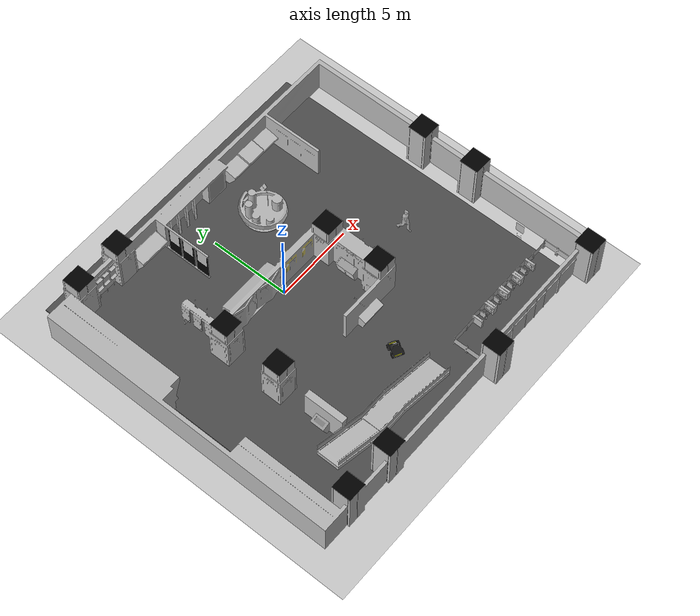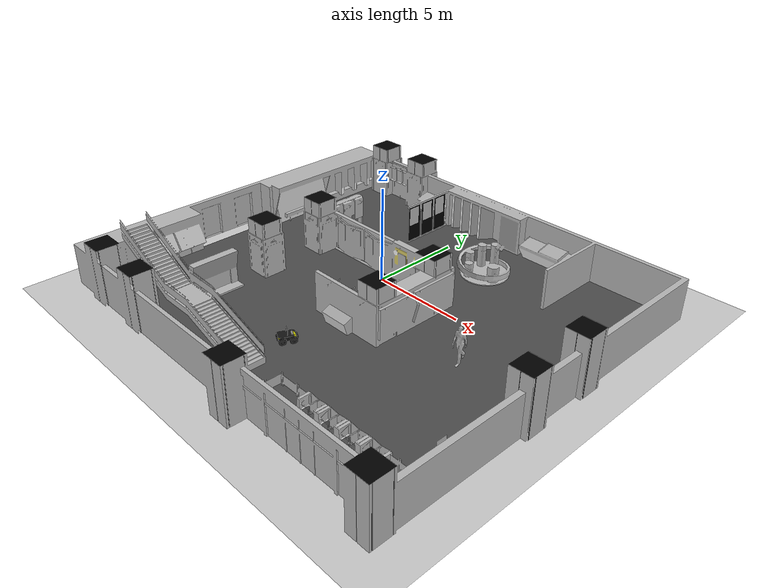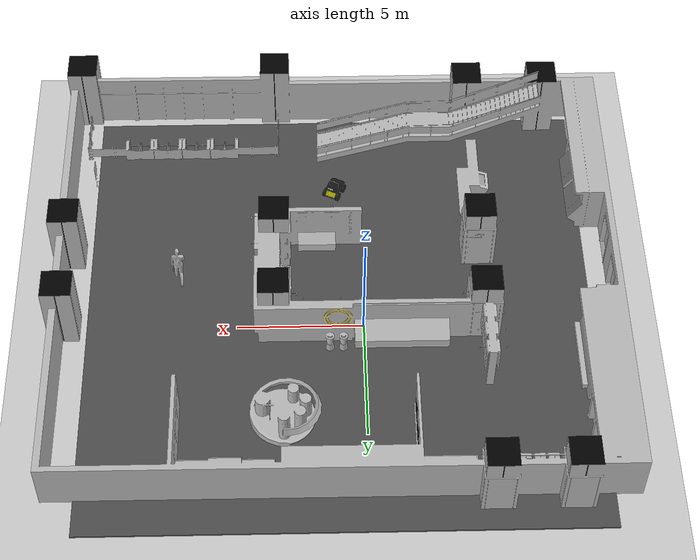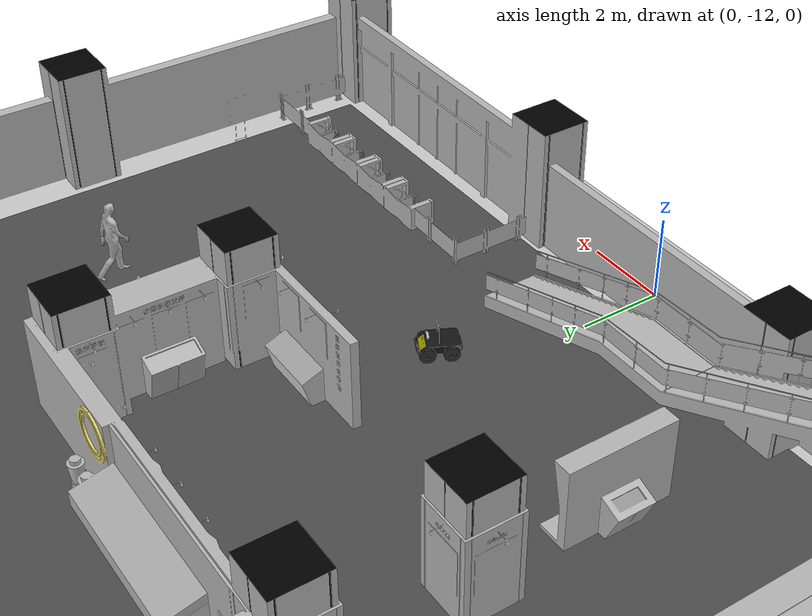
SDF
<sdf version="1.7">
 <world name="default">
  <light name="sun" type="directional">
   <pose>0 0 10 0 -0 0</pose>
   <diffuse>0.8 0.8 0.8 1</diffuse>
   <specular>0.2 0.2 0.2 1</specular>
   <attenuation>
    <range>1000</range>
    <constant>0.9</constant>
    <linear>0.01</linear>
    <quadratic>0.001</quadratic>
   </attenuation>
   <direction>-0.5 0.1 -0.9</direction>
   <spot><inner_angle>0</inner_angle><outer_angle>0</outer_angle><falloff>0</falloff></spot>
  </light>
  <model name="ground_plane">
   <static>1</static>
   <link name="link">
    <collision name="collision">
     <geometry><plane><normal>0 0 1</normal><size>100 100</size></plane></geometry>
     <surface>
      <contact><collide_bitmask>65535</collide_bitmask></contact>
      <friction><ode><mu>100</mu><mu2>50</mu2></ode></friction>
     </surface>
    </collision>
    <visual name="visual">
     <cast_shadows>0</cast_shadows>
     <geometry><plane><normal>0 0 1</normal><size>100 100</size></plane></geometry>
     <material>
      <script><uri>file://media/materials/scripts/gazebo.material</uri><name>Gazebo/Grey</name></script>
     </material>
    </visual>
   </link>
  </model>
  <gravity>0 0 -9.8</gravity>
  <magnetic_field>6e-06 2.3e-05 -4.2e-05</magnetic_field>
  <atmosphere type="adiabatic"/>
  <physics type="ode">
   <max_step_size>0.001</max_step_size>
   <real_time_factor>1</real_time_factor>
   <real_time_update_rate>1000</real_time_update_rate>
  </physics>
  <scene><ambient>0.4 0.4 0.4 1</ambient><background>0.7 0.7 0.7 1</background><shadows>1</shadows></scene>
  <spherical_coordinates>
   <surface_model>EARTH_WGS84</surface_model>
   <latitude_deg>0</latitude_deg>
   <longitude_deg>0</longitude_deg>
   <elevation>0</elevation>
   <heading_deg>0</heading_deg>
  </spherical_coordinates>
  <light name="user_directional_light_0" type="directional">
   <pose>12.5924 29.0347 1 0 -0 0</pose>
   <diffuse>0.5 0.5 0.5 1</diffuse>
   <specular>0.1 0.1 0.1 1</specular>
   <direction>0.1 0.1 -0.9</direction>
   <attenuation>
    <range>20</range>
    <constant>0.5</constant>
    <linear>0.01</linear>
    <quadratic>0.001</quadratic>
   </attenuation>
   <spot><inner_angle>0</inner_angle><outer_angle>0</outer_angle><falloff>0</falloff></spot>
  </light>
  <light name="user_directional_light_1" type="directional">
   <pose>11.9865 -27.8356 1 0 -0 0</pose>
   <diffuse>0.5 0.5 0.5 1</diffuse>
   <specular>0.1 0.1 0.1 1</specular>
   <direction>0.1 0.1 -0.9</direction>
   <attenuation>
    <range>20</range>
    <constant>0.5</constant>
    <linear>0.01</linear>
    <quadratic>0.001</quadratic>
   </attenuation>
   <spot><inner_angle>0</inner_angle><outer_angle>0</outer_angle><falloff>0</falloff></spot>
  </light>
  <light name="user_directional_light_2" type="directional">
   <pose>-11.73 29.4383 1 0 -0 0</pose>
   <diffuse>0.5 0.5 0.5 1</diffuse>
   <specular>0.1 0.1 0.1 1</specular>
   <direction>0.1 0.1 -0.9</direction>
   <attenuation>
    <range>20</range>
    <constant>0.5</constant>
    <linear>0.01</linear>
    <quadratic>0.001</quadratic>
   </attenuation>
   <spot><inner_angle>0</inner_angle><outer_angle>0</outer_angle><falloff>0</falloff></spot>
  </light>
  <light name="user_directional_light_3" type="directional">
   <pose>-12.4873 -27.4824 1 0 -0 0</pose>
   <diffuse>0.5 0.5 0.5 1</diffuse>
   <specular>0.1 0.1 0.1 1</specular>
   <direction>0.1 0.1 -0.9</direction>
   <attenuation>
    <range>20</range>
    <constant>0.5</constant>
    <linear>0.01</linear>
    <quadratic>0.001</quadratic>
   </attenuation>
   <spot><inner_angle>0</inner_angle><outer_angle>0</outer_angle><falloff>0</falloff></spot>
  </light>
  <light name="user_directional_light_4" type="directional">
   <pose>15.1656 0.977923 1 0 -0 0</pose>
   <diffuse>0.5 0.5 0.5 1</diffuse>
   <specular>0.1 0.1 0.1 1</specular>
   <direction>0.1 0.1 -0.9</direction>
   <attenuation>
    <range>20</range>
    <constant>0.5</constant>
    <linear>0.01</linear>
    <quadratic>0.001</quadratic>
   </attenuation>
   <spot><inner_angle>0</inner_angle><outer_angle>0</outer_angle><falloff>0</falloff></spot>
  </light>
  <light name="user_directional_light_5" type="directional">
   <pose>-16.5241 -1.24234 1 0 -0 0</pose>
   <diffuse>0.5 0.5 0.5 1</diffuse>
   <specular>0.1 0.1 0.1 1</specular>
   <direction>0.1 0.1 -0.9</direction>
   <attenuation>
    <range>20</range>
    <constant>0.5</constant>
    <linear>0.01</linear>
    <quadratic>0.001</quadratic>
   </attenuation>
   <spot><inner_angle>0</inner_angle><outer_angle>0</outer_angle><falloff>0</falloff></spot>
  </light>
  <model name="asphalt_plane">
   <static>1</static>
   <link name="link">
    <collision name="collision"><geometry><box><size>20 20 0.1</size></box></geometry></collision>
    <visual name="visual">
     <cast_shadows>0</cast_shadows>
     <geometry><box><size>20 20 0.1</size></box></geometry>
     <material>
      <script>
       <uri>model://asphalt_plane/materials/scripts</uri>
       <uri>model://asphalt_plane/materials/textures</uri>
       <name>vrc/asphalt</name>
      </script>
     </material>
    </visual>
   </link>
   <pose>0.937207 -0.832234 0 0 -0 0</pose>
  </model>
  <model name="person_walking">
   <link name="link">
    <inertial>
     <pose>0 0 0.95 0 -0 0</pose>
     <mass>80</mass>
     <inertia><ixx>27.82</ixx><ixy>0</ixy><ixz>0</ixz><iyy>24.88</iyy><iyz>0</iyz><izz>4.57</izz></inertia>
    </inertial>
    <collision name="bottom">
     <pose>0 0 0.01 0 -0 0</pose>
     <geometry><box><size>0.35 0.75 0.02</size></box></geometry>
    </collision>
    <collision name="person">
     <pose>0 0 -0.02 0 -0 0</pose>
     <geometry><mesh><uri>model://person_walking/meshes/walking.dae</uri></mesh></geometry>
    </collision>
    <visual name="visual">
     <pose>0 0 -0.02 0 -0 0</pose>
     <geometry><mesh><uri>model://person_walking/meshes/walking.dae</uri></mesh></geometry>
    </visual>
   </link>
   <pose>7.35335 -2.40902 0.049999 -2e-06 2e-06 0.025742</pose>
  </model>
  <model name="iscas_museum">
   <link name="link">
    <inertial><mass>15</mass></inertial>
    <collision name="collision">
     <pose>0 0 0 0 0 -1.57</pose>
     <geometry><mesh><uri>model://iscas_museum/meshes/ISCAS_museum.dae</uri></mesh></geometry>
    </collision>
    <visual name="visual">
     <pose>0 0 0 0 0 -1.57</pose>
     <geometry><mesh><uri>model://iscas_museum/meshes/ISCAS_museum.dae</uri></mesh></geometry>
    </visual>
   </link>
   <static>1</static>
   <pose>0.67615 -1.54267 0 0 0 -1.57415</pose>
  </model>
  <model name="husky">
   <link name="base_link">
    <inertial>
     <pose>-0.000615 -0.08484 0.062789 0 -0 0</pose>
     <mass>46.106</mass>
     <inertia>
      <ixx>0.625206</ixx>
      <ixy>-0.0238054</ixy>
      <ixz>-0.120516</ixz>
      <iyy>1.7575</iyy>
      <iyz>-0.00526876</iyz>
      <izz>2.03427</izz>
     </inertia>
    </inertial>
    <collision name="base_link_collision">
     <pose>0 0 0.061875 0 -0 0</pose>
     <geometry><box><size>0.9874 0.5709 0.12375</size></box></geometry>
    </collision>
    <collision name="base_link_collision_1">
     <pose>0 0 0.175625 0 -0 0</pose>
     <geometry><box><size>0.78992 0.5709 0.10375</size></box></geometry>
    </collision>
    <collision name="base_link_fixed_joint_lump__left_arm_link_collision_2">
     <pose>0 -0.2 0.3975 0 -0 0</pose>
     <geometry><box><size>0.02 0.02 0.3</size></box></geometry>
    </collision>
    <collision name="base_link_fixed_joint_lump__right_arm_link_collision_3">
     <pose>0 0.2 0.3975 0 -0 0</pose>
     <geometry><box><size>0.02 0.02 0.3</size></box></geometry>
    </collision>
    <collision name="base_link_fixed_joint_lump__top_link_collision_4">
     <pose>0 -0.2 0.5475 0 -0 0</pose>
     <geometry><box><size>0.02 0.5 0.02</size></box></geometry>
    </collision>
    <collision name="base_link_fixed_joint_lump__top_plate_link_collision_5">
     <pose>0.0812 0 0.245 0 -0 0</pose>
     <geometry>
      <mesh>
       <scale>1 1 1</scale>
       <uri>/home/praveensingh/aed_environment/src/husky/husky_description/meshes/top_plate.stl</uri>
      </mesh>
     </geometry>
    </collision>
    <collision name="base_link_fixed_joint_lump__camera_realsense_link_collision_6">
     <pose>0.0218 0 0.5675 0 -0 0</pose>
     <geometry><box><size>0.02505 0.09 0.025</size></box></geometry>
    </collision>
    <visual name="base_link_visual">
     <geometry>
      <mesh>
       <scale>1 1 1</scale>
       <uri>/home/praveensingh/aed_environment/src/husky/husky_description/meshes/base_link.dae</uri>
      </mesh>
     </geometry>
    </visual>
    <visual name="base_link_fixed_joint_lump__left_arm_link_visual_1">
     <pose>0 -0.2 0.3975 0 -0 0</pose>
     <geometry><box><size>0.02 0.02 0.3</size></box></geometry>
    </visual>
    <visual name="base_link_fixed_joint_lump__right_arm_link_visual_2">
     <pose>0 0.2 0.3975 0 -0 0</pose>
     <geometry><box><size>0.02 0.02 0.3</size></box></geometry>
    </visual>
    <visual name="base_link_fixed_joint_lump__top_link_visual_3">
     <pose>0 0 0.5475 0 -0 0</pose>
     <geometry><box><size>0.02 0.4 0.02</size></box></geometry>
    </visual>
    <visual name="base_link_fixed_joint_lump__front_bumper_link_visual_4">
     <pose>0.48 0 0.091 0 -0 0</pose>
     <geometry>
      <mesh>
       <scale>1 1 1</scale>
       <uri>/home/praveensingh/aed_environment/src/husky/husky_description/meshes/bumper.dae</uri>
      </mesh>
     </geometry>
    </visual>
    <visual name="base_link_fixed_joint_lump__rear_bumper_link_visual_5">
     <pose>-0.48 0 0.091 0 -0 3.14159</pose>
     <geometry>
      <mesh>
       <scale>1 1 1</scale>
       <uri>/home/praveensingh/aed_environment/src/husky/husky_description/meshes/bumper.dae</uri>
      </mesh>
     </geometry>
    </visual>
    <visual name="base_link_fixed_joint_lump__top_chassis_link_visual_6">
     <geometry>
      <mesh>
       <scale>1 1 1</scale>
       <uri>/home/praveensingh/aed_environment/src/husky/husky_description/meshes/top_chassis.dae</uri>
      </mesh>
     </geometry>
    </visual>
    <visual name="base_link_fixed_joint_lump__top_plate_link_visual_7">
     <pose>0.0812 0 0.245 0 -0 0</pose>
     <geometry>
      <mesh>
       <scale>1 1 1</scale>
       <uri>/home/praveensingh/aed_environment/src/husky/husky_description/meshes/top_plate.dae</uri>
      </mesh>
     </geometry>
    </visual>
    <visual name="base_link_fixed_joint_lump__camera_realsense_link_visual_8">
     <pose>0.0261 0 0.5675 1.5708 -0 1.5708</pose>
     <geometry>
      <mesh>
       <scale>1 1 1</scale>
       <uri>/home/praveensingh/aed_environment/src/realsense2_description/meshes/d435.dae</uri>
      </mesh>
     </geometry>
    </visual>
    <visual name="base_link_fixed_joint_lump__user_rail_link_visual_9">
     <pose>0.272 0 0.245 0 -0 0</pose>
     <geometry>
      <mesh>
       <scale>1 1 1</scale>
       <uri>/home/praveensingh/aed_environment/src/husky/husky_description/meshes/user_rail.dae</uri>
      </mesh>
     </geometry>
    </visual>
    <gravity>0</gravity>
    <sensor name="camera_realsense_depth" type="depth">
     <update_rate>30</update_rate>
     <camera>
      <horizontal_fov>1.50098</horizontal_fov>
      <image><width>680</width><height>480</height><format>RGB8</format></image>
      <clip><near>0.01</near><far>50</far></clip>
      <vertical_fov>0.9948376736367678</vertical_fov>
     </camera>
     <plugin name="kinect_controller" filename="libgazebo_ros_openni_kinect.so">
      <baseline>0.2</baseline>
      <alwaysOn>1</alwaysOn>
      <updateRate>30</updateRate>
      <cameraName>realsense</cameraName>
      <imageTopicName>color/image_raw</imageTopicName>
      <cameraInfoTopicName>color/camera_info</cameraInfoTopicName>
      <depthImageTopicName>depth/image_rect_raw</depthImageTopicName>
      <depthImageInfoTopicName>depth/camera_info</depthImageInfoTopicName>
      <pointCloudTopicName>depth/color/points</pointCloudTopicName>
      <frameName>camera_realsense_link_gazebo</frameName>
      <pointCloudCutoff>0.5</pointCloudCutoff>
      <pointCloudCutoffMax>20.0</pointCloudCutoffMax>
      <distortionK1>0.00000001</distortionK1>
      <distortionK2>0.00000001</distortionK2>
      <distortionK3>0.00000001</distortionK3>
      <distortionT1>0.00000001</distortionT1>
      <distortionT2>0.00000001</distortionT2>
      <CxPrime>0</CxPrime>
      <Cx>0</Cx>
      <Cy>0</Cy>
      <focalLength>0</focalLength>
      <hackBaseline>0</hackBaseline>
      <robotNamespace>/</robotNamespace>
     </plugin>
     <pose>0.0218 0.0175 0.5675 0 -0 0</pose>
    </sensor>
   </link>
   <joint name="front_left_wheel" type="revolute">
    <pose relative_to="base_link">0.256 0.2854 0.03282 0 -0 0</pose>
    <parent>base_link</parent>
    <child>front_left_wheel_link</child>
    <axis>
     <xyz>0 1 0</xyz>
     <limit><lower>-1e+16</lower><upper>1e+16</upper></limit>
     <dynamics><spring_reference>0</spring_reference><spring_stiffness>0</spring_stiffness></dynamics>
    </axis>
   </joint>
   <link name="front_left_wheel_link">
    <pose relative_to="front_left_wheel">0 0 0 0 -0 0</pose>
    <inertial>
     <mass>2.637</mass>
     <inertia><ixx>0.02467</ixx><ixy>0</ixy><ixz>0</ixz><iyy>0.04411</iyy><iyz>0</iyz><izz>0.02467</izz></inertia>
    </inertial>
    <collision name="front_left_wheel_link_collision">
     <pose>0 0 0 1.57079 -0 0</pose>
     <geometry><cylinder><length>0.1143</length><radius>0.1651</radius></cylinder></geometry>
     <surface>
      <contact><ode><kp>1e+07</kp><kd>1</kd></ode></contact>
      <friction><ode><mu>1</mu><mu2>1</mu2><fdir1>1 0 0</fdir1></ode></friction>
     </surface>
    </collision>
    <visual name="front_left_wheel_link_visual">
     <geometry>
      <mesh>
       <scale>1 1 1</scale>
       <uri>/home/praveensingh/aed_environment/src/husky/husky_description/meshes/wheel.dae</uri>
      </mesh>
     </geometry>
    </visual>
   </link>
   <joint name="front_right_wheel" type="revolute">
    <pose relative_to="base_link">0.256 -0.2854 0.03282 0 -0 0</pose>
    <parent>base_link</parent>
    <child>front_right_wheel_link</child>
    <axis>
     <xyz>0 1 0</xyz>
     <limit><lower>-1e+16</lower><upper>1e+16</upper></limit>
     <dynamics><spring_reference>0</spring_reference><spring_stiffness>0</spring_stiffness></dynamics>
    </axis>
   </joint>
   <link name="front_right_wheel_link">
    <pose relative_to="front_right_wheel">0 0 0 0 -0 0</pose>
    <inertial>
     <mass>2.637</mass>
     <inertia><ixx>0.02467</ixx><ixy>0</ixy><ixz>0</ixz><iyy>0.04411</iyy><iyz>0</iyz><izz>0.02467</izz></inertia>
    </inertial>
    <collision name="front_right_wheel_link_collision">
     <pose>0 0 0 1.57079 -0 0</pose>
     <geometry><cylinder><length>0.1143</length><radius>0.1651</radius></cylinder></geometry>
     <surface>
      <contact><ode><kp>1e+07</kp><kd>1</kd></ode></contact>
      <friction><ode><mu>1</mu><mu2>1</mu2><fdir1>1 0 0</fdir1></ode></friction>
     </surface>
    </collision>
    <visual name="front_right_wheel_link_visual">
     <geometry>
      <mesh>
       <scale>1 1 1</scale>
       <uri>/home/praveensingh/aed_environment/src/husky/husky_description/meshes/wheel.dae</uri>
      </mesh>
     </geometry>
    </visual>
   </link>
   <joint name="rear_left_wheel" type="revolute">
    <pose relative_to="base_link">-0.256 0.2854 0.03282 0 -0 0</pose>
    <parent>base_link</parent>
    <child>rear_left_wheel_link</child>
    <axis>
     <xyz>0 1 0</xyz>
     <limit><lower>-1e+16</lower><upper>1e+16</upper></limit>
     <dynamics><spring_reference>0</spring_reference><spring_stiffness>0</spring_stiffness></dynamics>
    </axis>
   </joint>
   <link name="rear_left_wheel_link">
    <pose relative_to="rear_left_wheel">0 0 0 0 -0 0</pose>
    <inertial>
     <mass>2.637</mass>
     <inertia><ixx>0.02467</ixx><ixy>0</ixy><ixz>0</ixz><iyy>0.04411</iyy><iyz>0</iyz><izz>0.02467</izz></inertia>
    </inertial>
    <collision name="rear_left_wheel_link_collision">
     <pose>0 0 0 1.57079 -0 0</pose>
     <geometry><cylinder><length>0.1143</length><radius>0.1651</radius></cylinder></geometry>
     <surface>
      <contact><ode><kp>1e+07</kp><kd>1</kd></ode></contact>
      <friction><ode><mu>1</mu><mu2>1</mu2><fdir1>1 0 0</fdir1></ode></friction>
     </surface>
    </collision>
    <visual name="rear_left_wheel_link_visual">
     <geometry>
      <mesh>
       <scale>1 1 1</scale>
       <uri>/home/praveensingh/aed_environment/src/husky/husky_description/meshes/wheel.dae</uri>
      </mesh>
     </geometry>
    </visual>
   </link>
   <joint name="rear_right_wheel" type="revolute">
    <pose relative_to="base_link">-0.256 -0.2854 0.03282 0 -0 0</pose>
    <parent>base_link</parent>
    <child>rear_right_wheel_link</child>
    <axis>
     <xyz>0 1 0</xyz>
     <limit><lower>-1e+16</lower><upper>1e+16</upper></limit>
     <dynamics><spring_reference>0</spring_reference><spring_stiffness>0</spring_stiffness></dynamics>
    </axis>
   </joint>
   <link name="rear_right_wheel_link">
    <pose relative_to="rear_right_wheel">0 0 0 0 -0 0</pose>
    <inertial>
     <mass>2.637</mass>
     <inertia><ixx>0.02467</ixx><ixy>0</ixy><ixz>0</ixz><iyy>0.04411</iyy><iyz>0</iyz><izz>0.02467</izz></inertia>
    </inertial>
    <collision name="rear_right_wheel_link_collision">
     <pose>0 0 0 1.57079 -0 0</pose>
     <geometry><cylinder><length>0.1143</length><radius>0.1651</radius></cylinder></geometry>
     <surface>
      <contact><ode><kp>1e+07</kp><kd>1</kd></ode></contact>
      <friction><ode><mu>1</mu><mu2>1</mu2><fdir1>1 0 0</fdir1></ode></friction>
     </surface>
    </collision>
    <visual name="rear_right_wheel_link_visual">
     <geometry>
      <mesh>
       <scale>1 1 1</scale>
       <uri>/home/praveensingh/aed_environment/src/husky/husky_description/meshes/wheel.dae</uri>
      </mesh>
     </geometry>
    </visual>
   </link>
   <plugin name="gazebo_ros_control" filename="libgazebo_ros_control.so">
    <robotNamespace>/</robotNamespace>
    <legacyModeNS>1</legacyModeNS>
   </plugin>
   <plugin name="imu_controller" filename="libhector_gazebo_ros_imu.so">
    <robotNamespace>/</robotNamespace>
    <updateRate>50.0</updateRate>
    <bodyName>base_link</bodyName>
    <topicName>imu/data</topicName>
    <accelDrift>0.005 0.005 0.005</accelDrift>
    <accelGaussianNoise>0.005 0.005 0.005</accelGaussianNoise>
    <rateDrift>0.005 0.005 0.005</rateDrift>
    <rateGaussianNoise>0.005 0.005 0.005</rateGaussianNoise>
    <headingDrift>0.005</headingDrift>
    <headingGaussianNoise>0.005</headingGaussianNoise>
   </plugin>
   <plugin name="gps_controller" filename="libhector_gazebo_ros_gps.so">
    <robotNamespace>/</robotNamespace>
    <updateRate>40</updateRate>
    <bodyName>base_link</bodyName>
    <frameId>base_link</frameId>
    <topicName>navsat/fix</topicName>
    <velocityTopicName>navsat/vel</velocityTopicName>
    <referenceLatitude>49.9</referenceLatitude>
    <referenceLongitude>8.9</referenceLongitude>
    <referenceHeading>90</referenceHeading>
    <referenceAltitude>0</referenceAltitude>
    <drift>0.0001 0.0001 0.0001</drift>
   </plugin>
   <plugin name="gazebo_ros_realsense" filename="/home/praveensingh/aed_environment/devel/lib/librealsense_gazebo_plugin.so">
    <bodyName>base_link</bodyName>
    <depthUpdateRate>30.0</depthUpdateRate>
    <colorUpdateRate>30.0</colorUpdateRate>
    <infrared1UpdateRate>30.0</infrared1UpdateRate>
    <infrared2UpdateRate>30.0</infrared2UpdateRate>
    <camera_name>realsense_camera</camera_name>
    <robotNamespace>/realsense</robotNamespace>
    <depthTopicName>/realsense/camera/depth/image_raw</depthTopicName>
    <colorTopicName>/realsense/camera/color/image_raw</colorTopicName>
    <infrared1TopicName>/realsense/camera/infra1/image_raw</infrared1TopicName>
    <infrared2TopicName>/realsense/camera/infra2/image_raw</infrared2TopicName>
    <colorInfoTopicName>/realsense/camera/color/camera_info</colorInfoTopicName>
    <depthInfoTopicName>/realsense/camera/depth/camera_info</depthInfoTopicName>
    <irInfoTopicName>/realsense/camera/infra/camera_info</irInfoTopicName>
    <pointCloudTopicName>/realsense/camera/depth/color/points</pointCloudTopicName>
    <pointCloud>1</pointCloud>
    <cameraInfoTopicName>/realsense/camera/camera_info</cameraInfoTopicName>
    <frameName>realsense_camera</frameName>
    <frameName>camera_link</frameName>
    <pointCloudCutOff>0.4</pointCloudCutOff>
    <pointCloudCutOffMax>5.0</pointCloudCutOffMax>
   </plugin>
   <frame name="base_footprint_joint" attached_to="base_link"><pose>0 0 -0.13228 0 -0 0</pose></frame>
   <frame name="base_footprint" attached_to="base_footprint_joint"/>
   <frame name="base_to_left" attached_to="base_link"><pose>0 -0.2 0.2475 0 -0 0</pose></frame>
   <frame name="left_arm_link" attached_to="base_to_left"/>
   <frame name="base_to_right" attached_to="base_link"><pose>0 0.2 0.2475 0 -0 0</pose></frame>
   <frame name="right_arm_link" attached_to="base_to_right"/>
   <frame name="base_to_top" attached_to="base_link"><pose>0 -0.2 0.5475 0 -0 0</pose></frame>
   <frame name="top_link" attached_to="base_to_top"/>
   <frame name="front_bumper" attached_to="base_link"><pose>0.48 0 0.091 0 -0 0</pose></frame>
   <frame name="front_bumper_link" attached_to="front_bumper"/>
   <frame name="imu_joint" attached_to="base_link"><pose>0.19 0 0.149 -3.14159 -1.57079 7e-06</pose></frame>
   <frame name="imu_link" attached_to="imu_joint"/>
   <frame name="inertial_joint" attached_to="base_link"/>
   <frame name="inertial_link" attached_to="inertial_joint"/>
   <frame name="rear_bumper" attached_to="base_link"><pose>-0.48 0 0.091 0 -0 3.14159</pose></frame>
   <frame name="rear_bumper_link" attached_to="rear_bumper"/>
   <frame name="top_chassis_joint" attached_to="base_link"/>
   <frame name="top_chassis_link" attached_to="top_chassis_joint"/>
   <frame name="camera_realsense_link_gazebo_joint" attached_to="camera_realsense_link">
    <pose>0 0 0 -1.5708 -0 -1.5708</pose>
   </frame>
   <frame name="camera_realsense_link_gazebo" attached_to="camera_realsense_link_gazebo_joint"/>
   <frame name="camera_realsense_link_joint" attached_to="camera_realsense_bottom_screw_frame">
    <pose>0.0106 0.0175 0.0125 0 -0 0</pose>
   </frame>
   <frame name="camera_realsense_link" attached_to="camera_realsense_link_joint"/>
   <frame name="camera_realsense_joint" attached_to="top_plate_link"><pose>-0.07 0 0.31 0 -0 0</pose></frame>
   <frame name="camera_realsense_bottom_screw_frame" attached_to="camera_realsense_joint"/>
   <frame name="top_plate_front_joint" attached_to="top_plate_link"><pose>0.36367 0 0.00639 0 -0 0</pose></frame>
   <frame name="top_plate_front_link" attached_to="top_plate_front_joint"/>
   <frame name="top_plate_rear_joint" attached_to="top_plate_link"><pose>-0.36633 0 0.00639 0 -0 0</pose></frame>
   <frame name="top_plate_rear_link" attached_to="top_plate_rear_joint"/>
   <frame name="top_plate_joint" attached_to="base_link"><pose>0.0812 0 0.245 0 -0 0</pose></frame>
   <frame name="top_plate_link" attached_to="top_plate_joint"/>
   <frame name="user_rail" attached_to="base_link"><pose>0.272 0 0.245 0 -0 0</pose></frame>
   <frame name="user_rail_link" attached_to="user_rail"/>
   <pose>1.02655 -6.868 0.182279 0 -0 -2.04231</pose>
  </model>
  <model name="kinect">
   <pose>1.19269 -6.67543 0.46965 -1e-06 -0.000618 1.09026</pose>
   <link name="link">
    <inertial>
     <mass>0.1</mass>
     <inertia><ixx>1</ixx><ixy>0</ixy><ixz>0</ixz><iyy>1</iyy><iyz>0</iyz><izz>1</izz></inertia>
    </inertial>
    <collision name="collision"><geometry><box><size>0.073 0.276 0.072</size></box></geometry></collision>
    <visual name="visual"><geometry><mesh><uri>model://kinect/meshes/kinect.dae</uri></mesh></geometry></visual>
    <sensor name="camera" type="depth">
     <update_rate>20</update_rate>
     <camera>
      <horizontal_fov>1.0472</horizontal_fov>
      <image><width>640</width><height>480</height><format>R8G8B8</format></image>
      <clip><near>0.05</near><far>3</far></clip>
     </camera>
     <plugin name="camera_plugin" filename="libgazebo_ros_openni_kinect.so">
      <baseline>0.2</baseline>
      <alwaysOn>1</alwaysOn>
      <updateRate>0.0</updateRate>
      <cameraName>camera_ir</cameraName>
      <imageTopicName>/camera/color/image_raw</imageTopicName>
      <cameraInfoTopicName>/camera/color/camera_info</cameraInfoTopicName>
      <depthImageTopicName>/camera/depth/image_raw</depthImageTopicName>
      <depthImageCameraInfoTopicName>/camera/depth/camera_info</depthImageCameraInfoTopicName>
      <pointCloudTopicName>/camera/depth/points</pointCloudTopicName>
      <frameName>camera_link</frameName>
      <pointCloudCutoff>0.5</pointCloudCutoff>
      <pointCloudCutoffMax>3.0</pointCloudCutoffMax>
      <distortionK1>0</distortionK1>
      <distortionK2>0</distortionK2>
      <distortionK3>0</distortionK3>
      <distortionT1>0</distortionT1>
      <distortionT2>0</distortionT2>
      <CxPrime>0</CxPrime>
      <Cx>0</Cx>
      <Cy>0</Cy>
      <focalLength>0</focalLength>
      <hackBaseline>0</hackBaseline>
     </plugin>
    </sensor>
   </link>
  </model>
 </world>
</sdf>
